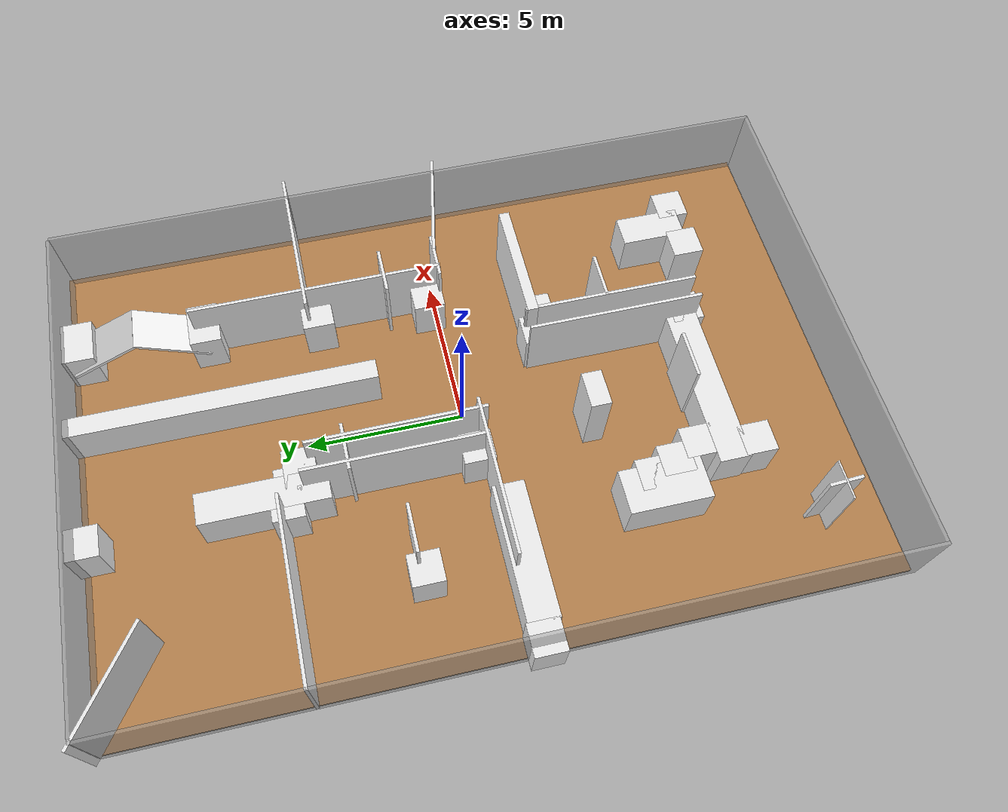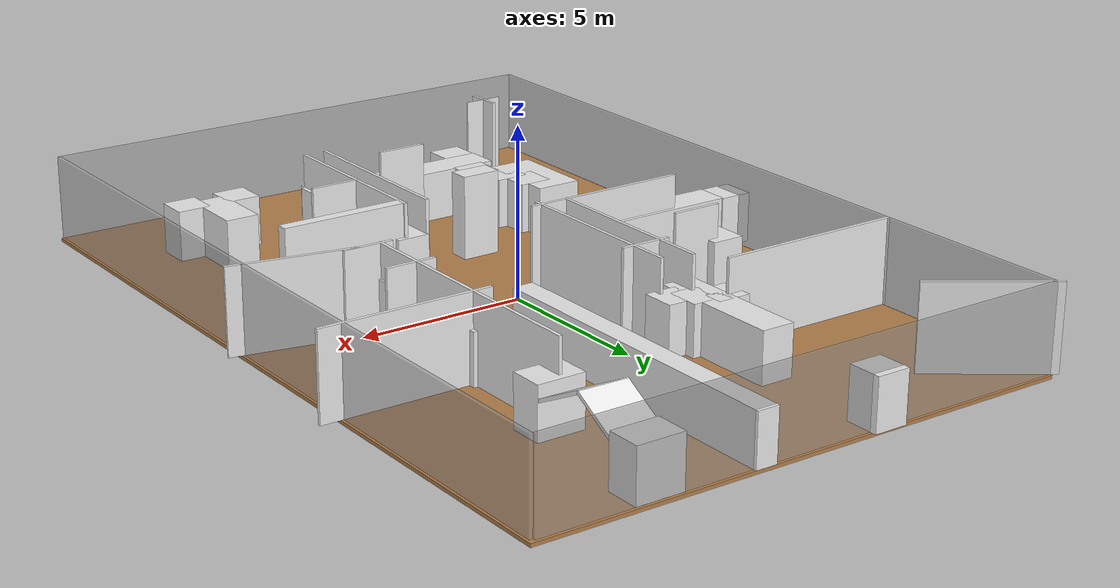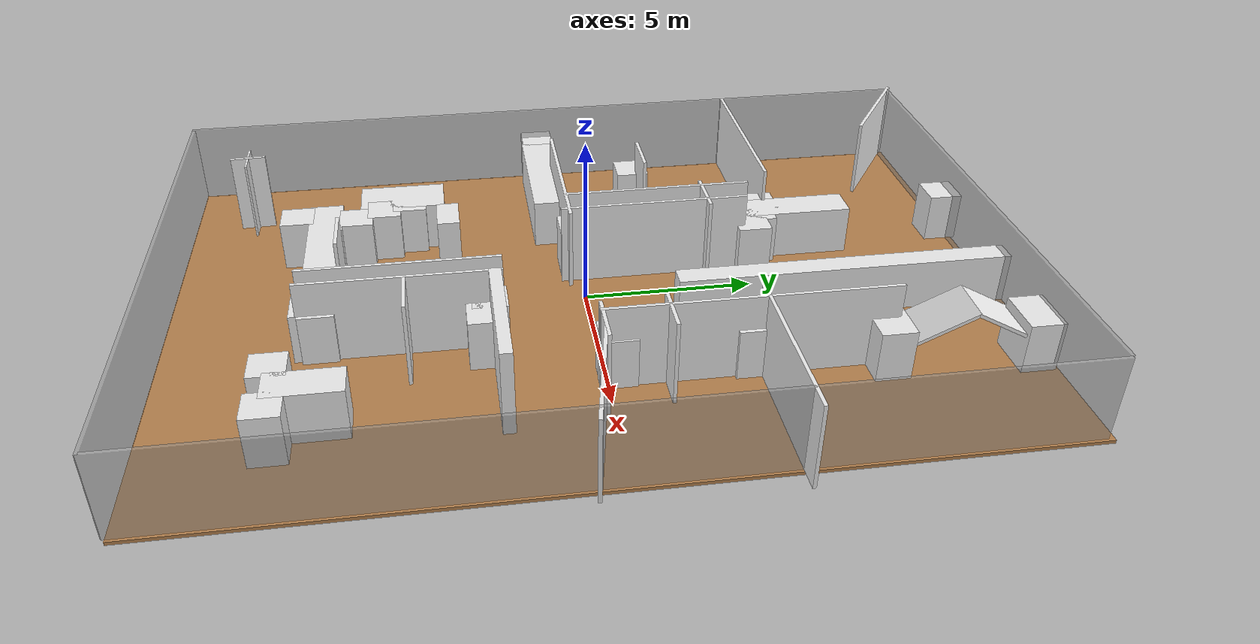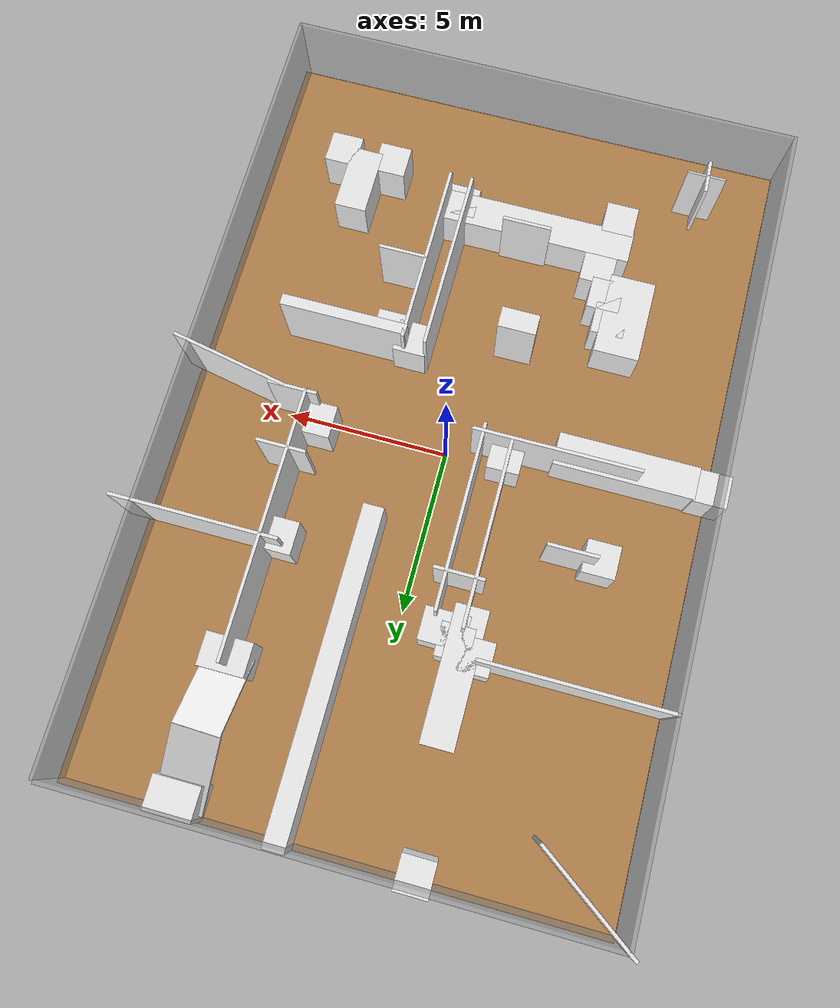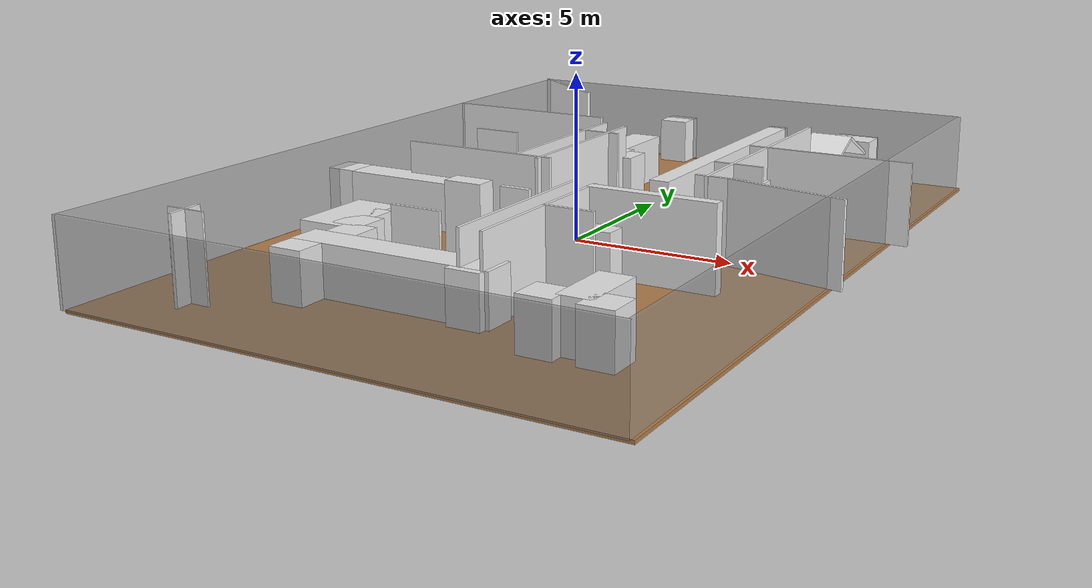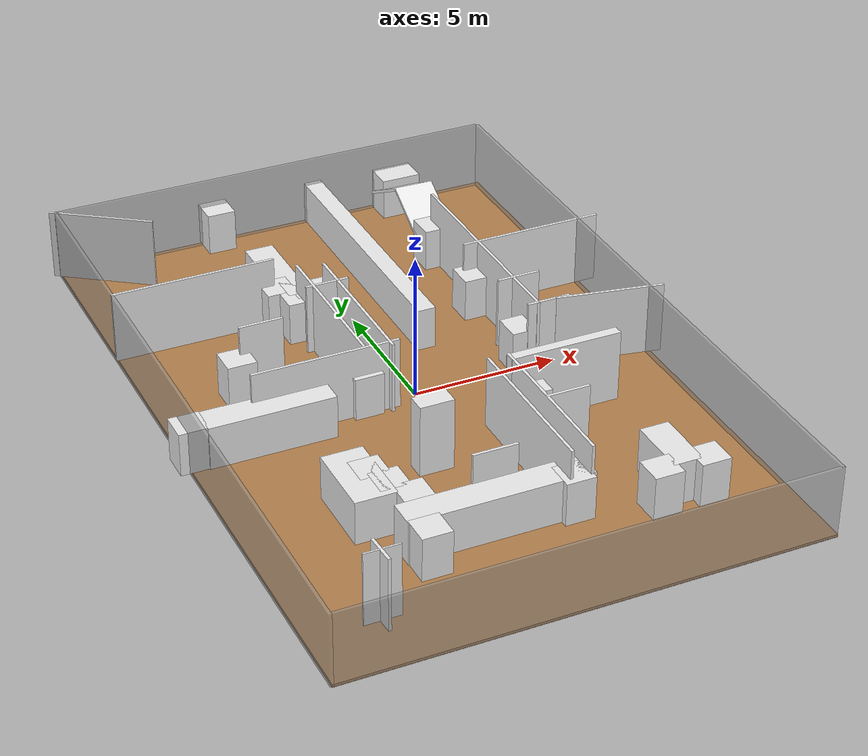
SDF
<sdf version="1.7">
 <world name="default">
  <light name="sun" type="directional">
   <pose>0 0 10 0 -0 0</pose>
   <diffuse>0.8 0.8 0.8 1</diffuse>
   <specular>0.2 0.2 0.2 1</specular>
   <attenuation>
    <range>1000</range>
    <constant>0.9</constant>
    <linear>0.01</linear>
    <quadratic>0.001</quadratic>
   </attenuation>
   <direction>-0.5 0.1 -0.9</direction>
   <spot><inner_angle>0</inner_angle><outer_angle>0</outer_angle><falloff>0</falloff></spot>
  </light>
  <physics name="default_physics" default="0" type="ode">
   <real_time_update_rate>1000</real_time_update_rate>
   <max_step_size>0.001</max_step_size>
   <real_time_factor>1</real_time_factor>
   <ode>
    <solver>
     <type>quick</type>
     <iters>150</iters>
     <precon_iters>0</precon_iters>
     <sor>1.4</sor>
     <use_dynamic_moi_rescaling>1</use_dynamic_moi_rescaling>
    </solver>
    <constraints>
     <cfm>1e-05</cfm>
     <erp>0.2</erp>
     <contact_max_correcting_vel>2000</contact_max_correcting_vel>
     <contact_surface_layer>0.01</contact_surface_layer>
    </constraints>
   </ode>
  </physics>
  <model name="box_1">
   <pose>0.05 -12.05 1.25 0 -0 0</pose>
   <static>1</static>
   <link name="link">
    <collision name="collision"><geometry><box><size>16.1 0.1 2.5</size></box></geometry></collision>
    <visual name="visual">
     <geometry><box><size>16.1 0.1 2.5</size></box></geometry>
     <material>
      <script><name>Gazebo/GreyTransparent</name><uri>file://media/materials/scripts/gazebo.material</uri></script>
     </material>
    </visual>
   </link>
  </model>
  <model name="box_2">
   <pose>8.06174 -0.026302 1.25 0 -0 0</pose>
   <static>1</static>
   <link name="link">
    <collision name="collision"><geometry><box><size>0.1 24.1 2.5</size></box></geometry></collision>
    <visual name="visual">
     <geometry><box><size>0.1 24.1 2.5</size></box></geometry>
     <material>
      <script><name>Gazebo/GreyTransparent</name><uri>file://media/materials/scripts/gazebo.material</uri></script>
     </material>
    </visual>
   </link>
  </model>
  <model name="box_3">
   <pose>-0.05 12.05 1.25 0 -0 0</pose>
   <static>1</static>
   <link name="link">
    <collision name="collision"><geometry><box><size>16.1 0.1 2.5</size></box></geometry></collision>
    <visual name="visual">
     <geometry><box><size>16.1 0.1 2.5</size></box></geometry>
     <material>
      <script><name>Gazebo/GreyTransparent</name><uri>file://media/materials/scripts/gazebo.material</uri></script>
     </material>
    </visual>
   </link>
  </model>
  <model name="box_4">
   <pose>-8.05 -0.05 1.25 0 -0 0</pose>
   <static>1</static>
   <link name="link">
    <collision name="collision"><geometry><box><size>0.1 24.1 2.5</size></box></geometry></collision>
    <visual name="visual">
     <geometry><box><size>0.1 24.1 2.5</size></box></geometry>
     <material>
      <script><name>Gazebo/GreyTransparent</name><uri>file://media/materials/scripts/gazebo.material</uri></script>
     </material>
    </visual>
   </link>
  </model>
  <model name="box_5">
   <pose>0.088242 0.087557 -0.05 0 -0 0</pose>
   <static>1</static>
   <link name="link">
    <collision name="collision"><geometry><box><size>16.2 24.2 0.1</size></box></geometry></collision>
    <visual name="visual">
     <geometry><box><size>16.2 24.2 0.1</size></box></geometry>
     <material>
      <script><name>Gazebo/WoodFloor</name><uri>file://media/materials/scripts/gazebo.material</uri></script>
     </material>
    </visual>
   </link>
  </model>
  <gravity>0 0 -9.8066</gravity>
  <magnetic_field>6e-06 2.3e-05 -4.2e-05</magnetic_field>
  <atmosphere type="adiabatic"/>
  <scene><ambient>0.4 0.4 0.4 1</ambient><background>0.7 0.7 0.7 1</background><shadows>1</shadows></scene>
  <spherical_coordinates>
   <surface_model>EARTH_WGS84</surface_model>
   <latitude_deg>0</latitude_deg>
   <longitude_deg>0</longitude_deg>
   <elevation>0</elevation>
   <heading_deg>0</heading_deg>
  </spherical_coordinates>
  <model name="box_8_clone">
   <pose>6.73576 -0.524414 1.25 0 0 -0.191358</pose>
   <static>1</static>
   <link name="link">
    <collision name="collision"><geometry><box><size>3.67087 0.1 2.5</size></box></geometry></collision>
    <visual name="visual">
     <geometry><box><size>3.67087 0.1 2.5</size></box></geometry>
     <material>
      <script><name>Gazebo/White</name><uri>file://media/materials/scripts/gazebo.material</uri></script>
     </material>
    </visual>
   </link>
  </model>
  <model name="box_9_clone_clone_0">
   <pose>-3.41271 -8.44795 0.75 0 -0 0</pose>
   <static>1</static>
   <link name="link">
    <collision name="collision"><geometry><box><size>1 1 1.5</size></box></geometry></collision>
    <visual name="visual">
     <geometry><box><size>1 1 1.5</size></box></geometry>
     <material>
      <script><name>Gazebo/White</name><uri>file://media/materials/scripts/gazebo.material</uri></script>
     </material>
    </visual>
   </link>
  </model>
  <model name="box_9_clone_clone_1">
   <pose>-0.878991 -7.58043 0.75 0 -0 0</pose>
   <static>1</static>
   <link name="link">
    <collision name="collision"><geometry><box><size>6.13337 1 1.5</size></box></geometry></collision>
    <visual name="visual">
     <geometry><box><size>6.13337 1 1.5</size></box></geometry>
     <material>
      <script><name>Gazebo/White</name><uri>file://media/materials/scripts/gazebo.material</uri></script>
     </material>
    </visual>
   </link>
  </model>
  <model name="box_9_clone_clone_2">
   <pose>-3.11126 -6.66453 0.75 0 -0 0</pose>
   <static>1</static>
   <link name="link">
    <collision name="collision"><geometry><box><size>1 1 1.5</size></box></geometry></collision>
    <visual name="visual">
     <geometry><box><size>1 1 1.5</size></box></geometry>
     <material>
      <script><name>Gazebo/White</name><uri>file://media/materials/scripts/gazebo.material</uri></script>
     </material>
    </visual>
   </link>
  </model>
  <model name="box_9_clone_clone_3">
   <pose>5.68831 -8.62591 0.75 0 -0 0</pose>
   <static>1</static>
   <link name="link">
    <collision name="collision"><geometry><box><size>1 1 1.5</size></box></geometry></collision>
    <visual name="visual">
     <geometry><box><size>1 1 1.5</size></box></geometry>
     <material>
      <script><name>Gazebo/White</name><uri>file://media/materials/scripts/gazebo.material</uri></script>
     </material>
    </visual>
   </link>
  </model>
  <model name="box_9_clone_clone_4">
   <pose>4.92737 -7.69876 0.75 0 -0 0</pose>
   <static>1</static>
   <link name="link">
    <collision name="collision"><geometry><box><size>1 2.09227 1.5</size></box></geometry></collision>
    <visual name="visual">
     <geometry><box><size>1 2.09227 1.5</size></box></geometry>
     <material>
      <script><name>Gazebo/White</name><uri>file://media/materials/scripts/gazebo.material</uri></script>
     </material>
    </visual>
   </link>
  </model>
  <model name="box_9_clone_clone_7">
   <pose>-2.40815 5.82285 0.75 0 -0 0</pose>
   <static>1</static>
   <link name="link">
    <collision name="collision"><geometry><box><size>1 1 1.5</size></box></geometry></collision>
    <visual name="visual">
     <geometry><box><size>1 1 1.5</size></box></geometry>
     <material>
      <script><name>Gazebo/White</name><uri>file://media/materials/scripts/gazebo.material</uri></script>
     </material>
    </visual>
   </link>
  </model>
  <model name="box_9_clone_clone_8">
   <pose>-2 6.49358 0.75 0 -0 0</pose>
   <static>1</static>
   <link name="link">
    <collision name="collision"><geometry><box><size>1 4.01205 1.5</size></box></geometry></collision>
    <visual name="visual">
     <geometry><box><size>1 4.01205 1.5</size></box></geometry>
     <material>
      <script><name>Gazebo/White</name><uri>file://media/materials/scripts/gazebo.material</uri></script>
     </material>
    </visual>
   </link>
  </model>
  <model name="box_8_clone_clone_13_clone_clone_clone_clone_0">
   <pose>3.88443 -2.73975 1.25 0 -0 0</pose>
   <static>1</static>
   <link name="link">
    <collision name="collision"><geometry><box><size>3.86211 0.344025 2.5</size></box></geometry></collision>
    <visual name="visual">
     <geometry><box><size>3.86211 0.344025 2.5</size></box></geometry>
     <material>
      <script><name>Gazebo/White</name><uri>file://media/materials/scripts/gazebo.material</uri></script>
     </material>
    </visual>
   </link>
  </model>
  <model name="box_8_clone_clone_11_clone">
   <pose>-1.19486 -3.87817 1.25 0 -0 0</pose>
   <static>1</static>
   <link name="link">
    <collision name="collision"><geometry><box><size>1.16351 0.640021 2.5</size></box></geometry></collision>
    <visual name="visual">
     <geometry><box><size>1.16351 0.640021 2.5</size></box></geometry>
     <material>
      <script><name>Gazebo/White</name><uri>file://media/materials/scripts/gazebo.material</uri></script>
     </material>
    </visual>
   </link>
  </model>
  <model name="box_8_clone_clone_4_clone_2">
   <pose>-4.30694 2.39293 1.25 0 -0 0</pose>
   <static>1</static>
   <link name="link">
    <collision name="collision"><geometry><box><size>1.5 0.1 2.5</size></box></geometry></collision>
    <visual name="visual">
     <geometry><box><size>1.5 0.1 2.5</size></box></geometry>
     <material>
      <script><name>Gazebo/White</name><uri>file://media/materials/scripts/gazebo.material</uri></script>
     </material>
    </visual>
   </link>
  </model>
  <model name="box_9_clone_clone_7_clone">
   <pose>-5.21616 2.23106 0.75 0 -0 0</pose>
   <static>1</static>
   <link name="link">
    <collision name="collision"><geometry><box><size>1 1 1.5</size></box></geometry></collision>
    <visual name="visual">
     <geometry><box><size>1 1 1.5</size></box></geometry>
     <material>
      <script><name>Gazebo/White</name><uri>file://media/materials/scripts/gazebo.material</uri></script>
     </material>
    </visual>
   </link>
  </model>
  <model name="box_9_clone_clone_7_clone_clone">
   <pose>-7.89766 -0.627489 0.75 0 -0 0</pose>
   <static>1</static>
   <link name="link">
    <collision name="collision"><geometry><box><size>1 1 1.5</size></box></geometry></collision>
    <visual name="visual">
     <geometry><box><size>1 1 1.5</size></box></geometry>
     <material>
      <script><name>Gazebo/White</name><uri>file://media/materials/scripts/gazebo.material</uri></script>
     </material>
    </visual>
   </link>
  </model>
  <model name="box_9_clone_clone_7_clone_clone_3">
   <pose>-4.25734 -5.25172 0.75 0 -0 0</pose>
   <static>1</static>
   <link name="link">
    <collision name="collision"><geometry><box><size>1.3917 2.57973 1.5</size></box></geometry></collision>
    <visual name="visual">
     <geometry><box><size>1.3917 2.57973 1.5</size></box></geometry>
     <material>
      <script><name>Gazebo/White</name><uri>file://media/materials/scripts/gazebo.material</uri></script>
     </material>
    </visual>
   </link>
  </model>
  <model name="box_9_clone_clone_7_clone_clone_4">
   <pose>-3.83027 -5.04481 0.75 0 -0 0</pose>
   <static>1</static>
   <link name="link">
    <collision name="collision"><geometry><box><size>1 1 1.5</size></box></geometry></collision>
    <visual name="visual">
     <geometry><box><size>1 1 1.5</size></box></geometry>
     <material>
      <script><name>Gazebo/White</name><uri>file://media/materials/scripts/gazebo.material</uri></script>
     </material>
    </visual>
   </link>
  </model>
  <model name="box_9_clone_clone_7_clone_clone_5">
   <pose>-3.52537 -5.82067 0.75 0 -0 0</pose>
   <static>1</static>
   <link name="link">
    <collision name="collision"><geometry><box><size>1 1 1.5</size></box></geometry></collision>
    <visual name="visual">
     <geometry><box><size>1 1 1.5</size></box></geometry>
     <material>
      <script><name>Gazebo/White</name><uri>file://media/materials/scripts/gazebo.material</uri></script>
     </material>
    </visual>
   </link>
  </model>
  <model name="box_9_clone_clone_5_clone_2_clone_0">
   <pose>4.37795 7.57531 0.75 0 -0 0</pose>
   <static>1</static>
   <link name="link">
    <collision name="collision"><geometry><box><size>1.40826 1 1.5</size></box></geometry></collision>
    <visual name="visual">
     <geometry><box><size>1.40826 1 1.5</size></box></geometry>
     <material>
      <script><name>Gazebo/White</name><uri>file://media/materials/scripts/gazebo.material</uri></script>
     </material>
    </visual>
   </link>
  </model>
  <model name="box_9_clone_clone_5_clone_2_clone_0_clone_0">
   <pose>4.08001 -8.6431 0.75 0 -0 0</pose>
   <static>1</static>
   <link name="link">
    <collision name="collision"><geometry><box><size>1 1 1.5</size></box></geometry></collision>
    <visual name="visual">
     <geometry><box><size>1 1 1.5</size></box></geometry>
     <material>
      <script><name>Gazebo/White</name><uri>file://media/materials/scripts/gazebo.material</uri></script>
     </material>
    </visual>
   </link>
  </model>
  <model name="box_6_clone_clone_4_clone">
   <pose>4.43192 10.7862 1.29712 0 -1.07805 1.53996</pose>
   <static>1</static>
   <link name="link">
    <collision name="collision"><geometry><box><size>0.1 1.42325 2.5</size></box></geometry></collision>
    <visual name="visual">
     <geometry><box><size>0.1 1.42325 2.5</size></box></geometry>
     <material>
      <script><name>Gazebo/White</name><uri>file://media/materials/scripts/gazebo.material</uri></script>
     </material>
    </visual>
   </link>
  </model>
  <model name="box_9_clone_clone_7_clone_clone_clone">
   <pose>-5.32159 -0.673379 0.75 0 -0 0</pose>
   <static>1</static>
   <link name="link">
    <collision name="collision"><geometry><box><size>4.25949 1 1.5</size></box></geometry></collision>
    <visual name="visual">
     <geometry><box><size>4.25949 1 1.5</size></box></geometry>
     <material>
      <script><name>Gazebo/White</name><uri>file://media/materials/scripts/gazebo.material</uri></script>
     </material>
    </visual>
   </link>
  </model>
  <model name="box_8_clone_clone_3_clone">
   <pose>6.25131 4.20674 1.25 0 -0 0</pose>
   <static>1</static>
   <link name="link">
    <collision name="collision"><geometry><box><size>5.04273 0.1 2.5</size></box></geometry></collision>
    <visual name="visual">
     <geometry><box><size>5.04273 0.1 2.5</size></box></geometry>
     <material>
      <script><name>Gazebo/White</name><uri>file://media/materials/scripts/gazebo.material</uri></script>
     </material>
    </visual>
   </link>
  </model>
  <model name="box_9_clone_clone_7_clone_0">
   <pose>1.52592 7.29543 0.75 0 -0 0</pose>
   <static>1</static>
   <link name="link">
    <collision name="collision"><geometry><box><size>0.641484 9.79262 1.5</size></box></geometry></collision>
    <visual name="visual">
     <geometry><box><size>0.641484 9.79262 1.5</size></box></geometry>
     <material>
      <script><name>Gazebo/White</name><uri>file://media/materials/scripts/gazebo.material</uri></script>
     </material>
    </visual>
   </link>
  </model>
  <model name="box_8_clone_clone_3_clone_clone">
   <pose>-5.25901 5.98168 1.25 0 -0 0</pose>
   <static>1</static>
   <link name="link">
    <collision name="collision"><geometry><box><size>5.64962 0.1 2.5</size></box></geometry></collision>
    <visual name="visual">
     <geometry><box><size>5.64962 0.1 2.5</size></box></geometry>
     <material>
      <script><name>Gazebo/White</name><uri>file://media/materials/scripts/gazebo.material</uri></script>
     </material>
    </visual>
   </link>
  </model>
  <model name="box_9_clone_clone_9_clone">
   <pose>-2.30467 11.7929 0.75 0 -0 0</pose>
   <static>1</static>
   <link name="link">
    <collision name="collision"><geometry><box><size>1 1 1.5</size></box></geometry></collision>
    <visual name="visual">
     <geometry><box><size>1 1 1.5</size></box></geometry>
     <material>
      <script><name>Gazebo/White</name><uri>file://media/materials/scripts/gazebo.material</uri></script>
     </material>
    </visual>
   </link>
  </model>
  <model name="box_9_clone_clone_7_clone_1">
   <pose>-1.75575 5.59579 0.75 0 -0 0</pose>
   <static>1</static>
   <link name="link">
    <collision name="collision"><geometry><box><size>1 1 1.5</size></box></geometry></collision>
    <visual name="visual">
     <geometry><box><size>1 1 1.5</size></box></geometry>
     <material>
      <script><name>Gazebo/White</name><uri>file://media/materials/scripts/gazebo.material</uri></script>
     </material>
    </visual>
   </link>
  </model>
  <model name="box_6_clone_clone_3_clone_clone_clone">
   <pose>-1.88838 2.46186 1.25 0 -0 0</pose>
   <static>1</static>
   <link name="link">
    <collision name="collision"><geometry><box><size>0.1 5.60332 2.5</size></box></geometry></collision>
    <visual name="visual">
     <geometry><box><size>0.1 5.60332 2.5</size></box></geometry>
     <material>
      <script><name>Gazebo/White</name><uri>file://media/materials/scripts/gazebo.material</uri></script>
     </material>
    </visual>
   </link>
  </model>
  <model name="box_6_clone_clone_3_clone_clone_clone_clone">
   <pose>4.27871 3.81707 1.25 0 -0 0</pose>
   <static>1</static>
   <link name="link">
    <collision name="collision"><geometry><box><size>0.1 8.11445 2.5</size></box></geometry></collision>
    <visual name="visual">
     <geometry><box><size>0.1 8.11445 2.5</size></box></geometry>
     <material>
      <script><name>Gazebo/White</name><uri>file://media/materials/scripts/gazebo.material</uri></script>
     </material>
    </visual>
   </link>
  </model>
  <model name="box_6_clone_clone_3_clone_clone_clone_clone_0">
   <pose>2.0182 -5.31678 1.25 0 -0 0</pose>
   <static>1</static>
   <link name="link">
    <collision name="collision"><geometry><box><size>0.1 5.60332 2.5</size></box></geometry></collision>
    <visual name="visual">
     <geometry><box><size>0.1 5.60332 2.5</size></box></geometry>
     <material>
      <script><name>Gazebo/White</name><uri>file://media/materials/scripts/gazebo.material</uri></script>
     </material>
    </visual>
   </link>
  </model>
  <model name="box_6_clone_clone_3_clone_clone_clone_clone_0_clone">
   <pose>1.33283 -5.29976 1.25 0 -0 0</pose>
   <static>1</static>
   <link name="link">
    <collision name="collision"><geometry><box><size>0.1 5.60332 2.5</size></box></geometry></collision>
    <visual name="visual">
     <geometry><box><size>0.1 5.60332 2.5</size></box></geometry>
     <material>
      <script><name>Gazebo/White</name><uri>file://media/materials/scripts/gazebo.material</uri></script>
     </material>
    </visual>
   </link>
  </model>
  <model name="box_9_clone_clone_5_clone_2_clone_0_clone_clone">
   <pose>1.83634 -2.91858 0.75 0 -0 0</pose>
   <static>1</static>
   <link name="link">
    <collision name="collision"><geometry><box><size>1 1 1.5</size></box></geometry></collision>
    <visual name="visual">
     <geometry><box><size>1 1 1.5</size></box></geometry>
     <material>
      <script><name>Gazebo/White</name><uri>file://media/materials/scripts/gazebo.material</uri></script>
     </material>
    </visual>
   </link>
  </model>
  <model name="box_8_clone_clone">
   <pose>4.67136 -0.169302 1.25 0 -0 0</pose>
   <static>1</static>
   <link name="link">
    <collision name="collision"><geometry><box><size>1.5 0.1 2.5</size></box></geometry></collision>
    <visual name="visual">
     <geometry><box><size>1.5 0.1 2.5</size></box></geometry>
     <material>
      <script><name>Gazebo/White</name><uri>file://media/materials/scripts/gazebo.material</uri></script>
     </material>
    </visual>
   </link>
  </model>
  <model name="box_9_clone_clone_7_clone_clone_0">
   <pose>-1.82358 -0.068042 0.75 0 -0 0</pose>
   <static>1</static>
   <link name="link">
    <collision name="collision"><geometry><box><size>1 1 1.5</size></box></geometry></collision>
    <visual name="visual">
     <geometry><box><size>1 1 1.5</size></box></geometry>
     <material>
      <script><name>Gazebo/White</name><uri>file://media/materials/scripts/gazebo.material</uri></script>
     </material>
    </visual>
   </link>
  </model>
  <model name="box_9_clone_clone_5_clone_2_clone_0_clone_0_clone">
   <pose>1.56966 -7.808 0.75 0 -0 0</pose>
   <static>1</static>
   <link name="link">
    <collision name="collision"><geometry><box><size>1 1 1.5</size></box></geometry></collision>
    <visual name="visual">
     <geometry><box><size>1 1 1.5</size></box></geometry>
     <material>
      <script><name>Gazebo/White</name><uri>file://media/materials/scripts/gazebo.material</uri></script>
     </material>
    </visual>
   </link>
  </model>
  <model name="box_9_clone_clone_5_clone_2_clone_clone_clone_0_clone">
   <pose>3.95001 3.94247 0.75 0 -0 0</pose>
   <static>1</static>
   <link name="link">
    <collision name="collision"><geometry><box><size>1 1 1.5</size></box></geometry></collision>
    <visual name="visual">
     <geometry><box><size>1 1 1.5</size></box></geometry>
     <material>
      <script><name>Gazebo/White</name><uri>file://media/materials/scripts/gazebo.material</uri></script>
     </material>
    </visual>
   </link>
  </model>
  <model name="box_9_clone_clone_5_clone_2_clone_clone_clone_0_clone_clone">
   <pose>3.89498 0.292409 0.75 0 -0 0</pose>
   <static>1</static>
   <link name="link">
    <collision name="collision"><geometry><box><size>1 1 1.5</size></box></geometry></collision>
    <visual name="visual">
     <geometry><box><size>1 1 1.5</size></box></geometry>
     <material>
      <script><name>Gazebo/White</name><uri>file://media/materials/scripts/gazebo.material</uri></script>
     </material>
    </visual>
   </link>
  </model>
  <model name="box_6_clone_clone_3_clone_clone_clone_clone_1">
   <pose>-1.02821 2.21541 1.25 0 -0 0.001144</pose>
   <static>1</static>
   <link name="link">
    <collision name="collision"><geometry><box><size>0.1 5.60332 2.5</size></box></geometry></collision>
    <visual name="visual">
     <geometry><box><size>0.1 5.60332 2.5</size></box></geometry>
     <material>
      <script><name>Gazebo/White</name><uri>file://media/materials/scripts/gazebo.material</uri></script>
     </material>
    </visual>
   </link>
  </model>
  <model name="box_9_clone_clone_8_clone_0_clone">
   <pose>-1.36364 5.28867 0.75 0 -0 0</pose>
   <static>1</static>
   <link name="link">
    <collision name="collision"><geometry><box><size>1.34488 1 1.5</size></box></geometry></collision>
    <visual name="visual">
     <geometry><box><size>1.34488 1 1.5</size></box></geometry>
     <material>
      <script><name>Gazebo/White</name><uri>file://media/materials/scripts/gazebo.material</uri></script>
     </material>
    </visual>
   </link>
  </model>
  <model name="box_8_clone_clone_3_clone_clone_clone">
   <pose>-3.21063 -0.339317 1.25 0 -0 0</pose>
   <static>1</static>
   <link name="link">
    <collision name="collision"><geometry><box><size>5.03031 0.1 2.5</size></box></geometry></collision>
    <visual name="visual">
     <geometry><box><size>5.03031 0.1 2.5</size></box></geometry>
     <material>
      <script><name>Gazebo/White</name><uri>file://media/materials/scripts/gazebo.material</uri></script>
     </material>
    </visual>
   </link>
  </model>
  <audio><device>default</device></audio>
  <model name="box_6_clone_clone_4_clone_clone">
   <pose>4.37354 8.61868 1.34155 0 -1.11157 -1.60232</pose>
   <static>1</static>
   <link name="link">
    <collision name="collision"><geometry><box><size>0.1 1.39813 2.5</size></box></geometry></collision>
    <visual name="visual">
     <geometry><box><size>0.1 1.39813 2.5</size></box></geometry>
     <material>
      <script><name>Gazebo/White</name><uri>file://media/materials/scripts/gazebo.material</uri></script>
     </material>
    </visual>
   </link>
  </model>
  <model name="box_9_clone_clone_5_clone_2_clone_0_clone_0_clone_0">
   <pose>2.56687 -3.08492 0.75 0 -0 0</pose>
   <static>1</static>
   <link name="link">
    <collision name="collision"><geometry><box><size>1 1 1.5</size></box></geometry></collision>
    <visual name="visual">
     <geometry><box><size>1 1 1.5</size></box></geometry>
     <material>
      <script><name>Gazebo/White</name><uri>file://media/materials/scripts/gazebo.material</uri></script>
     </material>
    </visual>
   </link>
  </model>
  <model name="box_8_clone_clone_11_clone_clone">
   <pose>2.72179 -5.17165 1.25 0 -0 0</pose>
   <static>1</static>
   <link name="link">
    <collision name="collision"><geometry><box><size>1.5 0.1 2.5</size></box></geometry></collision>
    <visual name="visual">
     <geometry><box><size>1.5 0.1 2.5</size></box></geometry>
     <material>
      <script><name>Gazebo/White</name><uri>file://media/materials/scripts/gazebo.material</uri></script>
     </material>
    </visual>
   </link>
  </model>
  <model name="box_8_clone_clone_11_clone_clone_0">
   <pose>-5.67141 -10.0374 1.25 0 -0 1.62008</pose>
   <static>1</static>
   <link name="link">
    <collision name="collision"><geometry><box><size>1.06277 0.1 2.5</size></box></geometry></collision>
    <visual name="visual">
     <geometry><box><size>1.06277 0.1 2.5</size></box></geometry>
     <material>
      <script><name>Gazebo/White</name><uri>file://media/materials/scripts/gazebo.material</uri></script>
     </material>
    </visual>
   </link>
  </model>
  <model name="box_8_clone_clone_11_clone_clone_1">
   <pose>-5.63429 -10.0383 1.25 0 -0 0</pose>
   <static>1</static>
   <link name="link">
    <collision name="collision"><geometry><box><size>1.19714 0.0589998 2.5</size></box></geometry></collision>
    <visual name="visual">
     <geometry><box><size>1.19714 0.0589998 2.5</size></box></geometry>
     <material>
      <script><name>Gazebo/White</name><uri>file://media/materials/scripts/gazebo.material</uri></script>
     </material>
    </visual>
   </link>
  </model>
  <model name="box_8_clone_clone_11_clone_clone_1_clone">
   <pose>-0.668626 -7.0443 1.25 0 -0 0</pose>
   <static>1</static>
   <link name="link">
    <collision name="collision"><geometry><box><size>1.5 0.1 2.5</size></box></geometry></collision>
    <visual name="visual">
     <geometry><box><size>1.5 0.1 2.5</size></box></geometry>
     <material>
      <script><name>Gazebo/White</name><uri>file://media/materials/scripts/gazebo.material</uri></script>
     </material>
    </visual>
   </link>
  </model>
  <model name="box_8_clone_clone_0">
   <pose>-6.74142 11.1297 1.25 0 0 -0.612143</pose>
   <static>1</static>
   <link name="link">
    <collision name="collision"><geometry><box><size>3.67088 0.1 2.5</size></box></geometry></collision>
    <visual name="visual">
     <geometry><box><size>3.67088 0.1 2.5</size></box></geometry>
     <material>
      <script><name>Gazebo/White</name><uri>file://media/materials/scripts/gazebo.material</uri></script>
     </material>
    </visual>
   </link>
  </model>
  <model name="box_8_clone_clone_4_clone_2_clone">
   <pose>-1.40831 3.82607 1.25 0 -0 0</pose>
   <static>1</static>
   <link name="link">
    <collision name="collision"><geometry><box><size>1.5 0.1 2.5</size></box></geometry></collision>
    <visual name="visual">
     <geometry><box><size>1.5 0.1 2.5</size></box></geometry>
     <material>
      <script><name>Gazebo/White</name><uri>file://media/materials/scripts/gazebo.material</uri></script>
     </material>
    </visual>
   </link>
  </model>
  <model name="box_8_clone_clone_4_clone_2_clone_clone">
   <pose>4.46476 1.59903 1.25 0 -0 0</pose>
   <static>1</static>
   <link name="link">
    <collision name="collision"><geometry><box><size>1.5 0.1 2.5</size></box></geometry></collision>
    <visual name="visual">
     <geometry><box><size>1.5 0.1 2.5</size></box></geometry>
     <material>
      <script><name>Gazebo/White</name><uri>file://media/materials/scripts/gazebo.material</uri></script>
     </material>
    </visual>
   </link>
  </model>
  <model name="box_9_clone_clone_5_clone_2_clone_0_clone">
   <pose>4.56593 11.5975 0.75 0 -0 0</pose>
   <static>1</static>
   <link name="link">
    <collision name="collision"><geometry><box><size>1.40826 1 1.5</size></box></geometry></collision>
    <visual name="visual">
     <geometry><box><size>1.40826 1 1.5</size></box></geometry>
     <material>
      <script><name>Gazebo/White</name><uri>file://media/materials/scripts/gazebo.material</uri></script>
     </material>
    </visual>
   </link>
  </model>
 </world>
</sdf>
